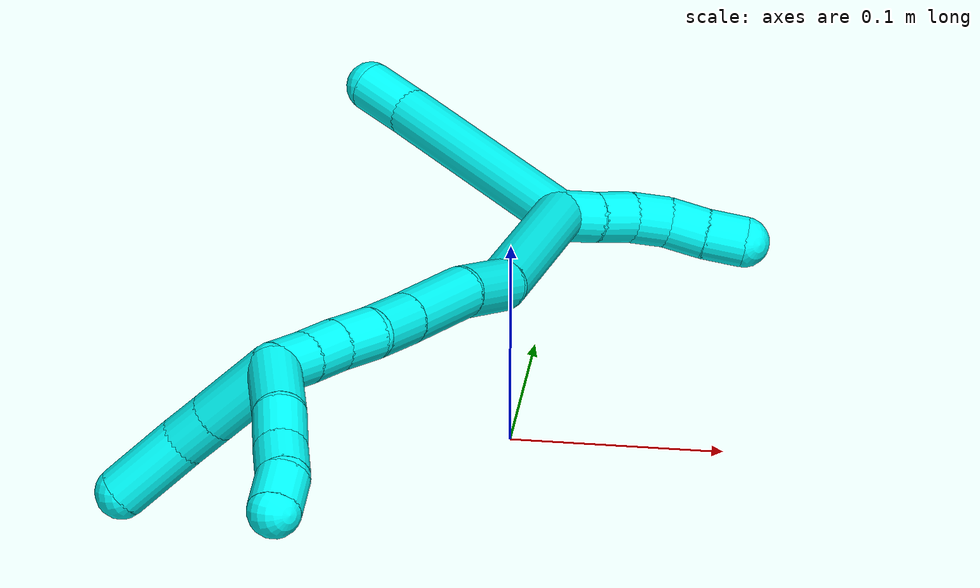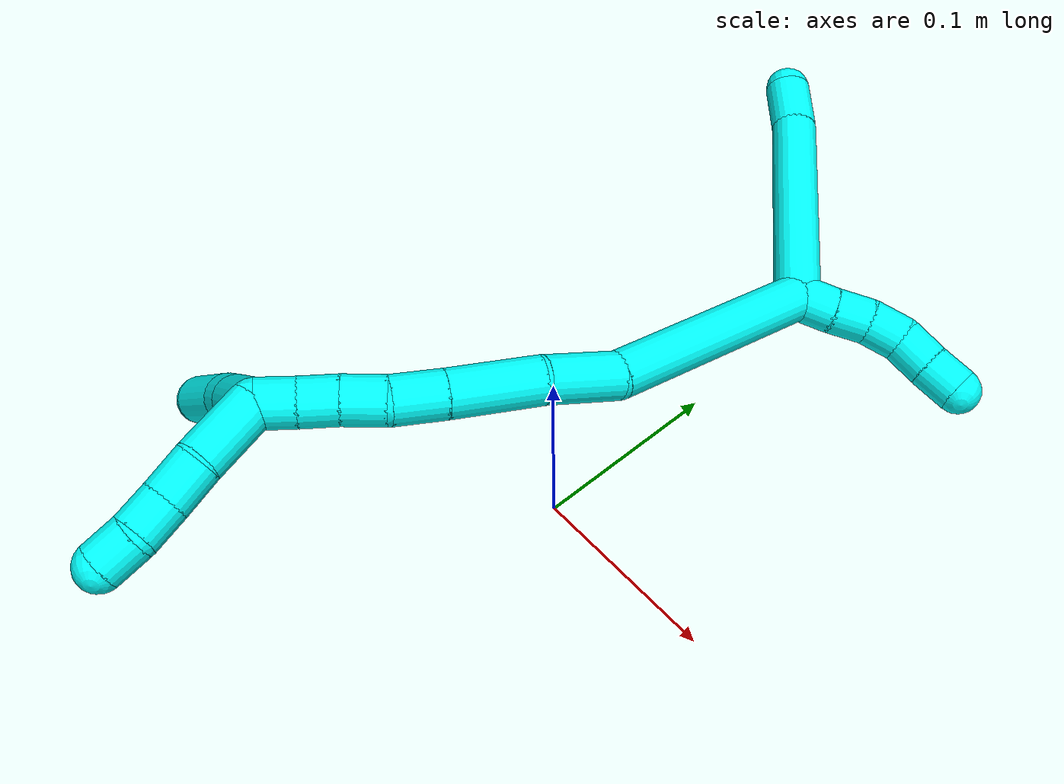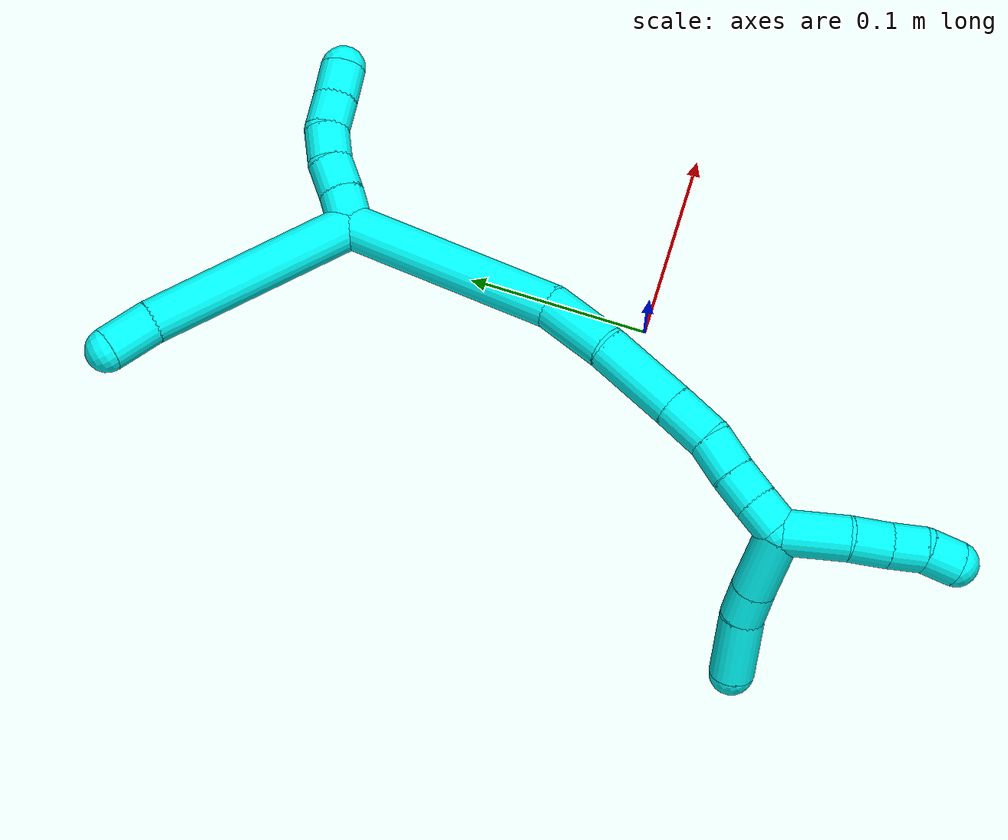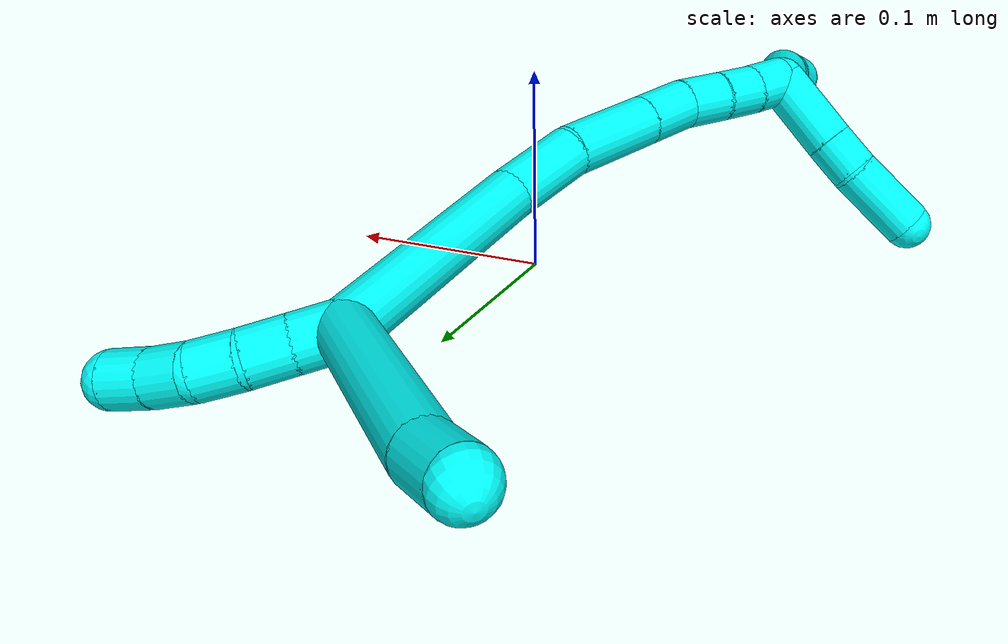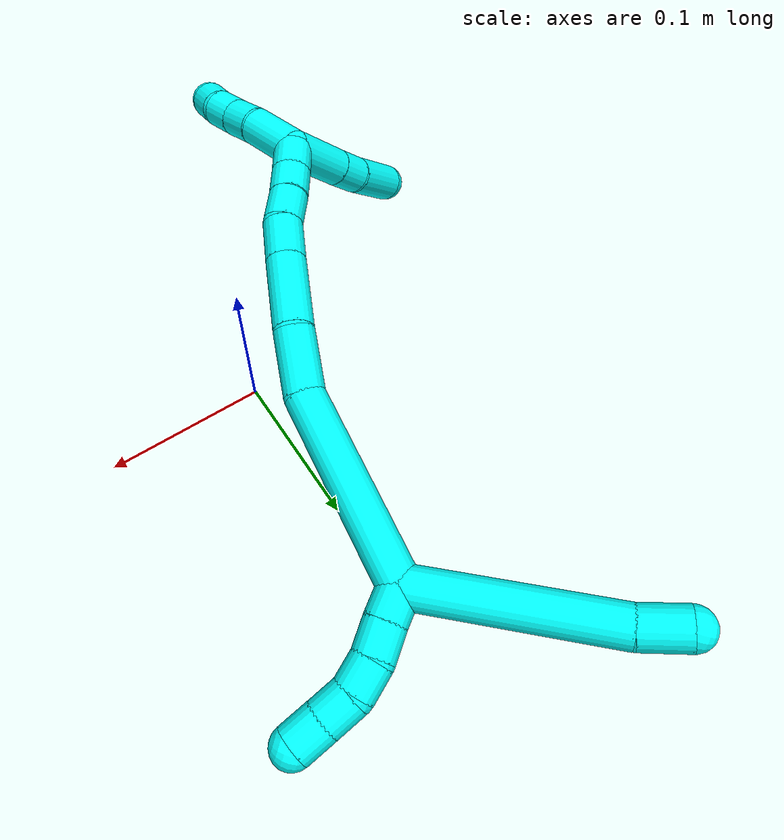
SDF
<sdf version="1.7">
 <world name="default">
  <model name="3">
   <static>0</static>
   <link name="3">
    <collision name="collision-cylinder-e_1_2_8">
     <pose>-0.017038 0.006879 -0.05782 -3.02318 -0.284656 2.35712</pose>
     <geometry><cylinder><radius>0.0125</radius><length>0.121339</length></cylinder></geometry>
     <surface>
      <friction><ode><mu>1.16</mu><mu2>1.16</mu2><slip1>0</slip1><slip2>0</slip2></ode></friction>
      <contact><ode><kp>1e+06</kp><kd>1</kd><max_vel>0</max_vel><min_depth>0.001</min_depth></ode></contact>
     </surface>
    </collision>
    <visual name="visual-cylinder-e_1_2_8">
     <pose>-0.017038 0.006879 -0.05782 -3.02318 -0.284656 2.35712</pose>
     <geometry><cylinder><radius>0.0125</radius><length>0.121339</length></cylinder></geometry>
     <material><ambient>0.003922 1 0.996078 1</ambient></material>
    </visual>
    <collision name="collision-cylinder-e_2_8_6">
     <pose>-0.039914 0.014148 -0.128722 -3.11178 -0.419661 3.00184</pose>
     <geometry><cylinder><radius>0.0125</radius><length>0.028661</length></cylinder></geometry>
     <surface>
      <friction><ode><mu>1.16</mu><mu2>1.16</mu2><slip1>0</slip1><slip2>0</slip2></ode></friction>
      <contact><ode><kp>1e+06</kp><kd>1</kd><max_vel>0</max_vel><min_depth>0.001</min_depth></ode></contact>
     </surface>
    </collision>
    <visual name="visual-cylinder-e_2_8_6">
     <pose>-0.039914 0.014148 -0.128722 -3.11178 -0.419661 3.00184</pose>
     <geometry><cylinder><radius>0.0125</radius><length>0.028661</length></cylinder></geometry>
     <material><ambient>0.003922 1 0.996078 1</ambient></material>
    </visual>
    <collision name="collision-cylinder-e_1_2_9">
     <pose>0.006171 0.007747 0.001383 -1.39407 0.665004 -0.562884</pose>
     <geometry><cylinder><radius>0.0125</radius><length>0.02</length></cylinder></geometry>
     <surface>
      <friction><ode><mu>1.16</mu><mu2>1.16</mu2><slip1>0</slip1><slip2>0</slip2></ode></friction>
      <contact><ode><kp>1e+06</kp><kd>1</kd><max_vel>0</max_vel><min_depth>0.001</min_depth></ode></contact>
     </surface>
    </collision>
    <visual name="visual-cylinder-e_1_2_9">
     <pose>0.006171 0.007747 0.001383 -1.39407 0.665004 -0.562884</pose>
     <geometry><cylinder><radius>0.0125</radius><length>0.02</length></cylinder></geometry>
     <material><ambient>0.003922 1 0.996078 1</ambient></material>
    </visual>
    <collision name="collision-cylinder-e_2_9_10">
     <pose>0.018182 0.023569 0.003582 -1.47016 0.623778 -0.567272</pose>
     <geometry><cylinder><radius>0.0125</radius><length>0.02</length></cylinder></geometry>
     <surface>
      <friction><ode><mu>1.16</mu><mu2>1.16</mu2><slip1>0</slip1><slip2>0</slip2></ode></friction>
      <contact><ode><kp>1e+06</kp><kd>1</kd><max_vel>0</max_vel><min_depth>0.001</min_depth></ode></contact>
     </surface>
    </collision>
    <visual name="visual-cylinder-e_2_9_10">
     <pose>0.018182 0.023569 0.003582 -1.47016 0.623778 -0.567272</pose>
     <geometry><cylinder><radius>0.0125</radius><length>0.02</length></cylinder></geometry>
     <material><ambient>0.003922 1 0.996078 1</ambient></material>
    </visual>
    <collision name="collision-cylinder-e_3_10_11">
     <pose>0.030482 0.038789 0.00709 -1.21038 0.70214 -0.496275</pose>
     <geometry><cylinder><radius>0.0125</radius><length>0.02</length></cylinder></geometry>
     <surface>
      <friction><ode><mu>1.16</mu><mu2>1.16</mu2><slip1>0</slip1><slip2>0</slip2></ode></friction>
      <contact><ode><kp>1e+06</kp><kd>1</kd><max_vel>0</max_vel><min_depth>0.001</min_depth></ode></contact>
     </surface>
    </collision>
    <visual name="visual-cylinder-e_3_10_11">
     <pose>0.030482 0.038789 0.00709 -1.21038 0.70214 -0.496275</pose>
     <geometry><cylinder><radius>0.0125</radius><length>0.02</length></cylinder></geometry>
     <material><ambient>0.003922 1 0.996078 1</ambient></material>
    </visual>
    <collision name="collision-cylinder-e_4_11_12">
     <pose>0.043569 0.051114 0.015188 -0.764268 0.724675 -0.302367</pose>
     <geometry><cylinder><radius>0.0125</radius><length>0.02</length></cylinder></geometry>
     <surface>
      <friction><ode><mu>1.16</mu><mu2>1.16</mu2><slip1>0</slip1><slip2>0</slip2></ode></friction>
      <contact><ode><kp>1e+06</kp><kd>1</kd><max_vel>0</max_vel><min_depth>0.001</min_depth></ode></contact>
     </surface>
    </collision>
    <visual name="visual-cylinder-e_4_11_12">
     <pose>0.043569 0.051114 0.015188 -0.764268 0.724675 -0.302367</pose>
     <geometry><cylinder><radius>0.0125</radius><length>0.02</length></cylinder></geometry>
     <material><ambient>0.003922 1 0.996078 1</ambient></material>
    </visual>
    <collision name="collision-cylinder-e_5_12_5">
     <pose>0.05611 0.062048 0.026245 -0.79417 0.632525 -0.272766</pose>
     <geometry><cylinder><radius>0.0125</radius><length>0.02</length></cylinder></geometry>
     <surface>
      <friction><ode><mu>1.16</mu><mu2>1.16</mu2><slip1>0</slip1><slip2>0</slip2></ode></friction>
      <contact><ode><kp>1e+06</kp><kd>1</kd><max_vel>0</max_vel><min_depth>0.001</min_depth></ode></contact>
     </surface>
    </collision>
    <visual name="visual-cylinder-e_5_12_5">
     <pose>0.05611 0.062048 0.026245 -0.79417 0.632525 -0.272766</pose>
     <geometry><cylinder><radius>0.0125</radius><length>0.02</length></cylinder></geometry>
     <material><ambient>0.003922 1 0.996078 1</ambient></material>
    </visual>
    <collision name="collision-cylinder-e_1_2_13">
     <pose>-0.018423 -0.042715 0.038837 0.832916 -0.3089 -0.137516</pose>
     <geometry><cylinder><radius>0.0125</radius><length>0.121198</length></cylinder></geometry>
     <surface>
      <friction><ode><mu>1.16</mu><mu2>1.16</mu2><slip1>0</slip1><slip2>0</slip2></ode></friction>
      <contact><ode><kp>1e+06</kp><kd>1</kd><max_vel>0</max_vel><min_depth>0.001</min_depth></ode></contact>
     </surface>
    </collision>
    <visual name="visual-cylinder-e_1_2_13">
     <pose>-0.018423 -0.042715 0.038837 0.832916 -0.3089 -0.137516</pose>
     <geometry><cylinder><radius>0.0125</radius><length>0.121198</length></cylinder></geometry>
     <material><ambient>0.003922 1 0.996078 1</ambient></material>
    </visual>
    <collision name="collision-cylinder-e_2_13_14">
     <pose>-0.047596 -0.100251 0.086376 1.03986 -0.558948 -0.325671</pose>
     <geometry><cylinder><radius>0.0125</radius><length>0.040546</length></cylinder></geometry>
     <surface>
      <friction><ode><mu>1.16</mu><mu2>1.16</mu2><slip1>0</slip1><slip2>0</slip2></ode></friction>
      <contact><ode><kp>1e+06</kp><kd>1</kd><max_vel>0</max_vel><min_depth>0.001</min_depth></ode></contact>
     </surface>
    </collision>
    <visual name="visual-cylinder-e_2_13_14">
     <pose>-0.047596 -0.100251 0.086376 1.03986 -0.558948 -0.325671</pose>
     <geometry><cylinder><radius>0.0125</radius><length>0.040546</length></cylinder></geometry>
     <material><ambient>0.003922 1 0.996078 1</ambient></material>
    </visual>
    <collision name="collision-cylinder-e_3_14_15">
     <pose>-0.067809 -0.135506 0.103776 1.16837 -0.402785 -0.268346</pose>
     <geometry><cylinder><radius>0.0125</radius><length>0.048277</length></cylinder></geometry>
     <surface>
      <friction><ode><mu>1.16</mu><mu2>1.16</mu2><slip1>0</slip1><slip2>0</slip2></ode></friction>
      <contact><ode><kp>1e+06</kp><kd>1</kd><max_vel>0</max_vel><min_depth>0.001</min_depth></ode></contact>
     </surface>
    </collision>
    <visual name="visual-cylinder-e_3_14_15">
     <pose>-0.067809 -0.135506 0.103776 1.16837 -0.402785 -0.268346</pose>
     <geometry><cylinder><radius>0.0125</radius><length>0.048277</length></cylinder></geometry>
     <material><ambient>0.003922 1 0.996078 1</ambient></material>
    </visual>
    <collision name="collision-cylinder-e_4_15_16">
     <pose>-0.082904 -0.167505 0.117167 1.18532 -0.423908 -0.287816</pose>
     <geometry><cylinder><radius>0.0125</radius><length>0.027389</length></cylinder></geometry>
     <surface>
      <friction><ode><mu>1.16</mu><mu2>1.16</mu2><slip1>0</slip1><slip2>0</slip2></ode></friction>
      <contact><ode><kp>1e+06</kp><kd>1</kd><max_vel>0</max_vel><min_depth>0.001</min_depth></ode></contact>
     </surface>
    </collision>
    <visual name="visual-cylinder-e_4_15_16">
     <pose>-0.082904 -0.167505 0.117167 1.18532 -0.423908 -0.287816</pose>
     <geometry><cylinder><radius>0.0125</radius><length>0.027389</length></cylinder></geometry>
     <material><ambient>0.003922 1 0.996078 1</ambient></material>
    </visual>
    <collision name="collision-cylinder-e_5_16_17">
     <pose>-0.093081 -0.189237 0.123077 1.45172 -0.417749 -0.371889</pose>
     <geometry><cylinder><radius>0.0125</radius><length>0.022403</length></cylinder></geometry>
     <surface>
      <friction><ode><mu>1.16</mu><mu2>1.16</mu2><slip1>0</slip1><slip2>0</slip2></ode></friction>
      <contact><ode><kp>1e+06</kp><kd>1</kd><max_vel>0</max_vel><min_depth>0.001</min_depth></ode></contact>
     </surface>
    </collision>
    <visual name="visual-cylinder-e_5_16_17">
     <pose>-0.093081 -0.189237 0.123077 1.45172 -0.417749 -0.371889</pose>
     <geometry><cylinder><radius>0.0125</radius><length>0.022403</length></cylinder></geometry>
     <material><ambient>0.003922 1 0.996078 1</ambient></material>
    </visual>
    <collision name="collision-cylinder-e_6_17_18">
     <pose>-0.101355 -0.20853 0.126103 1.37508 -0.381174 -0.314257</pose>
     <geometry><cylinder><radius>0.0125</radius><length>0.020048</length></cylinder></geometry>
     <surface>
      <friction><ode><mu>1.16</mu><mu2>1.16</mu2><slip1>0</slip1><slip2>0</slip2></ode></friction>
      <contact><ode><kp>1e+06</kp><kd>1</kd><max_vel>0</max_vel><min_depth>0.001</min_depth></ode></contact>
     </surface>
    </collision>
    <visual name="visual-cylinder-e_6_17_18">
     <pose>-0.101355 -0.20853 0.126103 1.37508 -0.381174 -0.314257</pose>
     <geometry><cylinder><radius>0.0125</radius><length>0.020048</length></cylinder></geometry>
     <material><ambient>0.003922 1 0.996078 1</ambient></material>
    </visual>
    <collision name="collision-cylinder-e_7_18_1">
     <pose>-0.109321 -0.226564 0.12994 1.34697 -0.434307 -0.348533</pose>
     <geometry><cylinder><radius>0.0125</radius><length>0.020138</length></cylinder></geometry>
     <surface>
      <friction><ode><mu>1.16</mu><mu2>1.16</mu2><slip1>0</slip1><slip2>0</slip2></ode></friction>
      <contact><ode><kp>1e+06</kp><kd>1</kd><max_vel>0</max_vel><min_depth>0.001</min_depth></ode></contact>
     </surface>
    </collision>
    <visual name="visual-cylinder-e_7_18_1">
     <pose>-0.109321 -0.226564 0.12994 1.34697 -0.434307 -0.348533</pose>
     <geometry><cylinder><radius>0.0125</radius><length>0.020138</length></cylinder></geometry>
     <material><ambient>0.003922 1 0.996078 1</ambient></material>
    </visual>
    <collision name="collision-cylinder-e_1_1_19">
     <pose>-0.106185 -0.247801 0.117567 2.43345 0.370894 0.93929</pose>
     <geometry><cylinder><radius>0.0125</radius><length>0.040683</length></cylinder></geometry>
     <surface>
      <friction><ode><mu>1.16</mu><mu2>1.16</mu2><slip1>0</slip1><slip2>0</slip2></ode></friction>
      <contact><ode><kp>1e+06</kp><kd>1</kd><max_vel>0</max_vel><min_depth>0.001</min_depth></ode></contact>
     </surface>
    </collision>
    <visual name="visual-cylinder-e_1_1_19">
     <pose>-0.106185 -0.247801 0.117567 2.43345 0.370894 0.93929</pose>
     <geometry><cylinder><radius>0.0125</radius><length>0.040683</length></cylinder></geometry>
     <material><ambient>0.003922 1 0.996078 1</ambient></material>
    </visual>
    <collision name="collision-cylinder-e_2_19_20">
     <pose>-0.095312 -0.266566 0.096192 2.39645 0.353404 0.857137</pose>
     <geometry><cylinder><radius>0.0125</radius><length>0.020228</length></cylinder></geometry>
     <surface>
      <friction><ode><mu>1.16</mu><mu2>1.16</mu2><slip1>0</slip1><slip2>0</slip2></ode></friction>
      <contact><ode><kp>1e+06</kp><kd>1</kd><max_vel>0</max_vel><min_depth>0.001</min_depth></ode></contact>
     </surface>
    </collision>
    <visual name="visual-cylinder-e_2_19_20">
     <pose>-0.095312 -0.266566 0.096192 2.39645 0.353404 0.857137</pose>
     <geometry><cylinder><radius>0.0125</radius><length>0.020228</length></cylinder></geometry>
     <material><ambient>0.003922 1 0.996078 1</ambient></material>
    </visual>
    <collision name="collision-cylinder-e_3_20_4">
     <pose>-0.085769 -0.287727 0.077878 2.227 0.314282 0.623016</pose>
     <geometry><cylinder><radius>0.0125</radius><length>0.039089</length></cylinder></geometry>
     <surface>
      <friction><ode><mu>1.16</mu><mu2>1.16</mu2><slip1>0</slip1><slip2>0</slip2></ode></friction>
      <contact><ode><kp>1e+06</kp><kd>1</kd><max_vel>0</max_vel><min_depth>0.001</min_depth></ode></contact>
     </surface>
    </collision>
    <visual name="visual-cylinder-e_3_20_4">
     <pose>-0.085769 -0.287727 0.077878 2.227 0.314282 0.623016</pose>
     <geometry><cylinder><radius>0.0125</radius><length>0.039089</length></cylinder></geometry>
     <material><ambient>0.003922 1 0.996078 1</ambient></material>
    </visual>
    <collision name="collision-cylinder-e_1_1_21">
     <pose>-0.112113 -0.246593 0.146772 0.644346 0.077853 0.025999</pose>
     <geometry><cylinder><radius>0.0125</radius><length>0.037149</length></cylinder></geometry>
     <surface>
      <friction><ode><mu>1.16</mu><mu2>1.16</mu2><slip1>0</slip1><slip2>0</slip2></ode></friction>
      <contact><ode><kp>1e+06</kp><kd>1</kd><max_vel>0</max_vel><min_depth>0.001</min_depth></ode></contact>
     </surface>
    </collision>
    <visual name="visual-cylinder-e_1_1_21">
     <pose>-0.112113 -0.246593 0.146772 0.644346 0.077853 0.025999</pose>
     <geometry><cylinder><radius>0.0125</radius><length>0.037149</length></cylinder></geometry>
     <material><ambient>0.003922 1 0.996078 1</ambient></material>
    </visual>
    <collision name="collision-cylinder-e_2_21_22">
     <pose>-0.108206 -0.265364 0.169582 0.762561 0.218832 0.088024</pose>
     <geometry><cylinder><radius>0.0125</radius><length>0.022682</length></cylinder></geometry>
     <surface>
      <friction><ode><mu>1.16</mu><mu2>1.16</mu2><slip1>0</slip1><slip2>0</slip2></ode></friction>
      <contact><ode><kp>1e+06</kp><kd>1</kd><max_vel>0</max_vel><min_depth>0.001</min_depth></ode></contact>
     </surface>
    </collision>
    <visual name="visual-cylinder-e_2_21_22">
     <pose>-0.108206 -0.265364 0.169582 0.762561 0.218832 0.088024</pose>
     <geometry><cylinder><radius>0.0125</radius><length>0.022682</length></cylinder></geometry>
     <material><ambient>0.003922 1 0.996078 1</ambient></material>
    </visual>
    <collision name="collision-cylinder-e_3_22_23">
     <pose>-0.104318 -0.279365 0.185278 0.690518 0.142028 0.051157</pose>
     <geometry><cylinder><radius>0.0125</radius><length>0.020154</length></cylinder></geometry>
     <surface>
      <friction><ode><mu>1.16</mu><mu2>1.16</mu2><slip1>0</slip1><slip2>0</slip2></ode></friction>
      <contact><ode><kp>1e+06</kp><kd>1</kd><max_vel>0</max_vel><min_depth>0.001</min_depth></ode></contact>
     </surface>
    </collision>
    <visual name="visual-cylinder-e_3_22_23">
     <pose>-0.104318 -0.279365 0.185278 0.690518 0.142028 0.051157</pose>
     <geometry><cylinder><radius>0.0125</radius><length>0.020154</length></cylinder></geometry>
     <material><ambient>0.003922 1 0.996078 1</ambient></material>
    </visual>
    <collision name="collision-cylinder-e_4_23_3">
     <pose>-0.101094 -0.293955 0.198361 0.991028 0.180583 0.097792</pose>
     <geometry><cylinder><radius>0.0125</radius><length>0.020014</length></cylinder></geometry>
     <surface>
      <friction><ode><mu>1.16</mu><mu2>1.16</mu2><slip1>0</slip1><slip2>0</slip2></ode></friction>
      <contact><ode><kp>1e+06</kp><kd>1</kd><max_vel>0</max_vel><min_depth>0.001</min_depth></ode></contact>
     </surface>
    </collision>
    <visual name="visual-cylinder-e_4_23_3">
     <pose>-0.101094 -0.293955 0.198361 0.991028 0.180583 0.097792</pose>
     <geometry><cylinder><radius>0.0125</radius><length>0.020014</length></cylinder></geometry>
     <material><ambient>0.003922 1 0.996078 1</ambient></material>
    </visual>
    <collision name="collision-sphere-3">
     <pose>-0.099297 -0.302191 0.203754 0 -0 0</pose>
     <geometry><sphere><radius>0.0125</radius></sphere></geometry>
     <surface>
      <friction><ode><mu>1.16</mu><mu2>1.16</mu2><slip1>0</slip1><slip2>0</slip2></ode></friction>
      <contact><ode><kp>1e+06</kp><kd>1</kd><max_vel>0</max_vel><min_depth>0.001</min_depth></ode></contact>
     </surface>
    </collision>
    <visual name="visual-sphere-3">
     <pose>-0.099297 -0.302191 0.203754 0 -0 0</pose>
     <geometry><sphere><radius>0.0125</radius></sphere></geometry>
     <material><ambient>0.003922 1 0.996078 1</ambient></material>
    </visual>
    <collision name="collision-sphere-23">
     <pose>-0.102891 -0.285719 0.192968 0 -0 0</pose>
     <geometry><sphere><radius>0.0125</radius></sphere></geometry>
     <surface>
      <friction><ode><mu>1.16</mu><mu2>1.16</mu2><slip1>0</slip1><slip2>0</slip2></ode></friction>
      <contact><ode><kp>1e+06</kp><kd>1</kd><max_vel>0</max_vel><min_depth>0.001</min_depth></ode></contact>
     </surface>
    </collision>
    <visual name="visual-sphere-23">
     <pose>-0.102891 -0.285719 0.192968 0 -0 0</pose>
     <geometry><sphere><radius>0.0125</radius></sphere></geometry>
     <material><ambient>0.003922 1 0.996078 1</ambient></material>
    </visual>
    <collision name="collision-sphere-22">
     <pose>-0.105744 -0.273012 0.177587 0 -0 0</pose>
     <geometry><sphere><radius>0.0125</radius></sphere></geometry>
     <surface>
      <friction><ode><mu>1.16</mu><mu2>1.16</mu2><slip1>0</slip1><slip2>0</slip2></ode></friction>
      <contact><ode><kp>1e+06</kp><kd>1</kd><max_vel>0</max_vel><min_depth>0.001</min_depth></ode></contact>
     </surface>
    </collision>
    <visual name="visual-sphere-22">
     <pose>-0.105744 -0.273012 0.177587 0 -0 0</pose>
     <geometry><sphere><radius>0.0125</radius></sphere></geometry>
     <material><ambient>0.003922 1 0.996078 1</ambient></material>
    </visual>
    <collision name="collision-sphere-21">
     <pose>-0.110668 -0.257717 0.161578 0 -0 0</pose>
     <geometry><sphere><radius>0.0125</radius></sphere></geometry>
     <surface>
      <friction><ode><mu>1.16</mu><mu2>1.16</mu2><slip1>0</slip1><slip2>0</slip2></ode></friction>
      <contact><ode><kp>1e+06</kp><kd>1</kd><max_vel>0</max_vel><min_depth>0.001</min_depth></ode></contact>
     </surface>
    </collision>
    <visual name="visual-sphere-21">
     <pose>-0.110668 -0.257717 0.161578 0 -0 0</pose>
     <geometry><sphere><radius>0.0125</radius></sphere></geometry>
     <material><ambient>0.003922 1 0.996078 1</ambient></material>
    </visual>
    <collision name="collision-sphere-4">
     <pose>-0.079727 -0.302454 0.066537 0 -0 0</pose>
     <geometry><sphere><radius>0.0125</radius></sphere></geometry>
     <surface>
      <friction><ode><mu>1.16</mu><mu2>1.16</mu2><slip1>0</slip1><slip2>0</slip2></ode></friction>
      <contact><ode><kp>1e+06</kp><kd>1</kd><max_vel>0</max_vel><min_depth>0.001</min_depth></ode></contact>
     </surface>
    </collision>
    <visual name="visual-sphere-4">
     <pose>-0.079727 -0.302454 0.066537 0 -0 0</pose>
     <geometry><sphere><radius>0.0125</radius></sphere></geometry>
     <material><ambient>0.003922 1 0.996078 1</ambient></material>
    </visual>
    <collision name="collision-sphere-20">
     <pose>-0.091811 -0.273 0.089218 0 -0 0</pose>
     <geometry><sphere><radius>0.0125</radius></sphere></geometry>
     <surface>
      <friction><ode><mu>1.16</mu><mu2>1.16</mu2><slip1>0</slip1><slip2>0</slip2></ode></friction>
      <contact><ode><kp>1e+06</kp><kd>1</kd><max_vel>0</max_vel><min_depth>0.001</min_depth></ode></contact>
     </surface>
    </collision>
    <visual name="visual-sphere-20">
     <pose>-0.091811 -0.273 0.089218 0 -0 0</pose>
     <geometry><sphere><radius>0.0125</radius></sphere></geometry>
     <material><ambient>0.003922 1 0.996078 1</ambient></material>
    </visual>
    <collision name="collision-sphere-11">
     <pose>0.03694 0.045933 0.009783 0 -0 0</pose>
     <geometry><sphere><radius>0.0125</radius></sphere></geometry>
     <surface>
      <friction><ode><mu>1.16</mu><mu2>1.16</mu2><slip1>0</slip1><slip2>0</slip2></ode></friction>
      <contact><ode><kp>1e+06</kp><kd>1</kd><max_vel>0</max_vel><min_depth>0.001</min_depth></ode></contact>
     </surface>
    </collision>
    <visual name="visual-sphere-11">
     <pose>0.03694 0.045933 0.009783 0 -0 0</pose>
     <geometry><sphere><radius>0.0125</radius></sphere></geometry>
     <material><ambient>0.003922 1 0.996078 1</ambient></material>
    </visual>
    <collision name="collision-sphere-10">
     <pose>0.024023 0.031645 0.004398 0 -0 0</pose>
     <geometry><sphere><radius>0.0125</radius></sphere></geometry>
     <surface>
      <friction><ode><mu>1.16</mu><mu2>1.16</mu2><slip1>0</slip1><slip2>0</slip2></ode></friction>
      <contact><ode><kp>1e+06</kp><kd>1</kd><max_vel>0</max_vel><min_depth>0.001</min_depth></ode></contact>
     </surface>
    </collision>
    <visual name="visual-sphere-10">
     <pose>0.024023 0.031645 0.004398 0 -0 0</pose>
     <geometry><sphere><radius>0.0125</radius></sphere></geometry>
     <material><ambient>0.003922 1 0.996078 1</ambient></material>
    </visual>
    <collision name="collision-sphere-6">
     <pose>-0.045753 0.014538 -0.141803 0 -0 0</pose>
     <geometry><sphere><radius>0.0125</radius></sphere></geometry>
     <surface>
      <friction><ode><mu>1.16</mu><mu2>1.16</mu2><slip1>0</slip1><slip2>0</slip2></ode></friction>
      <contact><ode><kp>1e+06</kp><kd>1</kd><max_vel>0</max_vel><min_depth>0.001</min_depth></ode></contact>
     </surface>
    </collision>
    <visual name="visual-sphere-6">
     <pose>-0.045753 0.014538 -0.141803 0 -0 0</pose>
     <geometry><sphere><radius>0.0125</radius></sphere></geometry>
     <material><ambient>0.003922 1 0.996078 1</ambient></material>
    </visual>
    <collision name="collision-sphere-9">
     <pose>0.012341 0.015493 0.002767 0 -0 0</pose>
     <geometry><sphere><radius>0.0125</radius></sphere></geometry>
     <surface>
      <friction><ode><mu>1.16</mu><mu2>1.16</mu2><slip1>0</slip1><slip2>0</slip2></ode></friction>
      <contact><ode><kp>1e+06</kp><kd>1</kd><max_vel>0</max_vel><min_depth>0.001</min_depth></ode></contact>
     </surface>
    </collision>
    <visual name="visual-sphere-9">
     <pose>0.012341 0.015493 0.002767 0 -0 0</pose>
     <geometry><sphere><radius>0.0125</radius></sphere></geometry>
     <material><ambient>0.003922 1 0.996078 1</ambient></material>
    </visual>
    <collision name="collision-sphere-2">
     <geometry><sphere><radius>0.0125</radius></sphere></geometry>
     <surface>
      <friction><ode><mu>1.16</mu><mu2>1.16</mu2><slip1>0</slip1><slip2>0</slip2></ode></friction>
      <contact><ode><kp>1e+06</kp><kd>1</kd><max_vel>0</max_vel><min_depth>0.001</min_depth></ode></contact>
     </surface>
    </collision>
    <visual name="visual-sphere-2">
     <geometry><sphere><radius>0.0125</radius></sphere></geometry>
     <material><ambient>0.003922 1 0.996078 1</ambient></material>
    </visual>
    <collision name="collision-sphere-19">
     <pose>-0.098812 -0.260132 0.103166 0 -0 0</pose>
     <geometry><sphere><radius>0.0125</radius></sphere></geometry>
     <surface>
      <friction><ode><mu>1.16</mu><mu2>1.16</mu2><slip1>0</slip1><slip2>0</slip2></ode></friction>
      <contact><ode><kp>1e+06</kp><kd>1</kd><max_vel>0</max_vel><min_depth>0.001</min_depth></ode></contact>
     </surface>
    </collision>
    <visual name="visual-sphere-19">
     <pose>-0.098812 -0.260132 0.103166 0 -0 0</pose>
     <geometry><sphere><radius>0.0125</radius></sphere></geometry>
     <material><ambient>0.003922 1 0.996078 1</ambient></material>
    </visual>
    <collision name="collision-sphere-8">
     <pose>-0.034075 0.013758 -0.115641 0 -0 0</pose>
     <geometry><sphere><radius>0.0125</radius></sphere></geometry>
     <surface>
      <friction><ode><mu>1.16</mu><mu2>1.16</mu2><slip1>0</slip1><slip2>0</slip2></ode></friction>
      <contact><ode><kp>1e+06</kp><kd>1</kd><max_vel>0</max_vel><min_depth>0.001</min_depth></ode></contact>
     </surface>
    </collision>
    <visual name="visual-sphere-8">
     <pose>-0.034075 0.013758 -0.115641 0 -0 0</pose>
     <geometry><sphere><radius>0.0125</radius></sphere></geometry>
     <material><ambient>0.003922 1 0.996078 1</ambient></material>
    </visual>
    <collision name="collision-sphere-12">
     <pose>0.050198 0.056295 0.020592 0 -0 0</pose>
     <geometry><sphere><radius>0.0125</radius></sphere></geometry>
     <surface>
      <friction><ode><mu>1.16</mu><mu2>1.16</mu2><slip1>0</slip1><slip2>0</slip2></ode></friction>
      <contact><ode><kp>1e+06</kp><kd>1</kd><max_vel>0</max_vel><min_depth>0.001</min_depth></ode></contact>
     </surface>
    </collision>
    <visual name="visual-sphere-12">
     <pose>0.050198 0.056295 0.020592 0 -0 0</pose>
     <geometry><sphere><radius>0.0125</radius></sphere></geometry>
     <material><ambient>0.003922 1 0.996078 1</ambient></material>
    </visual>
    <collision name="collision-sphere-5">
     <pose>0.062022 0.067801 0.031898 0 -0 0</pose>
     <geometry><sphere><radius>0.0125</radius></sphere></geometry>
     <surface>
      <friction><ode><mu>1.16</mu><mu2>1.16</mu2><slip1>0</slip1><slip2>0</slip2></ode></friction>
      <contact><ode><kp>1e+06</kp><kd>1</kd><max_vel>0</max_vel><min_depth>0.001</min_depth></ode></contact>
     </surface>
    </collision>
    <visual name="visual-sphere-5">
     <pose>0.062022 0.067801 0.031898 0 -0 0</pose>
     <geometry><sphere><radius>0.0125</radius></sphere></geometry>
     <material><ambient>0.003922 1 0.996078 1</ambient></material>
    </visual>
    <collision name="collision-sphere-13">
     <pose>-0.036846 -0.08543 0.077674 0 -0 0</pose>
     <geometry><sphere><radius>0.0125</radius></sphere></geometry>
     <surface>
      <friction><ode><mu>1.16</mu><mu2>1.16</mu2><slip1>0</slip1><slip2>0</slip2></ode></friction>
      <contact><ode><kp>1e+06</kp><kd>1</kd><max_vel>0</max_vel><min_depth>0.001</min_depth></ode></contact>
     </surface>
    </collision>
    <visual name="visual-sphere-13">
     <pose>-0.036846 -0.08543 0.077674 0 -0 0</pose>
     <geometry><sphere><radius>0.0125</radius></sphere></geometry>
     <material><ambient>0.003922 1 0.996078 1</ambient></material>
    </visual>
    <collision name="collision-sphere-14">
     <pose>-0.058347 -0.115073 0.095079 0 -0 0</pose>
     <geometry><sphere><radius>0.0125</radius></sphere></geometry>
     <surface>
      <friction><ode><mu>1.16</mu><mu2>1.16</mu2><slip1>0</slip1><slip2>0</slip2></ode></friction>
      <contact><ode><kp>1e+06</kp><kd>1</kd><max_vel>0</max_vel><min_depth>0.001</min_depth></ode></contact>
     </surface>
    </collision>
    <visual name="visual-sphere-14">
     <pose>-0.058347 -0.115073 0.095079 0 -0 0</pose>
     <geometry><sphere><radius>0.0125</radius></sphere></geometry>
     <material><ambient>0.003922 1 0.996078 1</ambient></material>
    </visual>
    <collision name="collision-sphere-15">
     <pose>-0.077271 -0.155938 0.112474 0 -0 0</pose>
     <geometry><sphere><radius>0.0125</radius></sphere></geometry>
     <surface>
      <friction><ode><mu>1.16</mu><mu2>1.16</mu2><slip1>0</slip1><slip2>0</slip2></ode></friction>
      <contact><ode><kp>1e+06</kp><kd>1</kd><max_vel>0</max_vel><min_depth>0.001</min_depth></ode></contact>
     </surface>
    </collision>
    <visual name="visual-sphere-15">
     <pose>-0.077271 -0.155938 0.112474 0 -0 0</pose>
     <geometry><sphere><radius>0.0125</radius></sphere></geometry>
     <material><ambient>0.003922 1 0.996078 1</ambient></material>
    </visual>
    <collision name="collision-sphere-16">
     <pose>-0.088536 -0.179071 0.121861 0 -0 0</pose>
     <geometry><sphere><radius>0.0125</radius></sphere></geometry>
     <surface>
      <friction><ode><mu>1.16</mu><mu2>1.16</mu2><slip1>0</slip1><slip2>0</slip2></ode></friction>
      <contact><ode><kp>1e+06</kp><kd>1</kd><max_vel>0</max_vel><min_depth>0.001</min_depth></ode></contact>
     </surface>
    </collision>
    <visual name="visual-sphere-16">
     <pose>-0.088536 -0.179071 0.121861 0 -0 0</pose>
     <geometry><sphere><radius>0.0125</radius></sphere></geometry>
     <material><ambient>0.003922 1 0.996078 1</ambient></material>
    </visual>
    <collision name="collision-sphere-17">
     <pose>-0.097626 -0.199403 0.124293 0 -0 0</pose>
     <geometry><sphere><radius>0.0125</radius></sphere></geometry>
     <surface>
      <friction><ode><mu>1.16</mu><mu2>1.16</mu2><slip1>0</slip1><slip2>0</slip2></ode></friction>
      <contact><ode><kp>1e+06</kp><kd>1</kd><max_vel>0</max_vel><min_depth>0.001</min_depth></ode></contact>
     </surface>
    </collision>
    <visual name="visual-sphere-17">
     <pose>-0.097626 -0.199403 0.124293 0 -0 0</pose>
     <geometry><sphere><radius>0.0125</radius></sphere></geometry>
     <material><ambient>0.003922 1 0.996078 1</ambient></material>
    </visual>
    <collision name="collision-sphere-18">
     <pose>-0.105084 -0.217657 0.127912 0 -0 0</pose>
     <geometry><sphere><radius>0.0125</radius></sphere></geometry>
     <surface>
      <friction><ode><mu>1.16</mu><mu2>1.16</mu2><slip1>0</slip1><slip2>0</slip2></ode></friction>
      <contact><ode><kp>1e+06</kp><kd>1</kd><max_vel>0</max_vel><min_depth>0.001</min_depth></ode></contact>
     </surface>
    </collision>
    <visual name="visual-sphere-18">
     <pose>-0.105084 -0.217657 0.127912 0 -0 0</pose>
     <geometry><sphere><radius>0.0125</radius></sphere></geometry>
     <material><ambient>0.003922 1 0.996078 1</ambient></material>
    </visual>
    <collision name="collision-sphere-1">
     <pose>-0.113557 -0.23547 0.131967 0 -0 0</pose>
     <geometry><sphere><radius>0.0125</radius></sphere></geometry>
     <surface>
      <friction><ode><mu>1.16</mu><mu2>1.16</mu2><slip1>0</slip1><slip2>0</slip2></ode></friction>
      <contact><ode><kp>1e+06</kp><kd>1</kd><max_vel>0</max_vel><min_depth>0.001</min_depth></ode></contact>
     </surface>
    </collision>
    <visual name="visual-sphere-1">
     <pose>-0.113557 -0.23547 0.131967 0 -0 0</pose>
     <geometry><sphere><radius>0.0125</radius></sphere></geometry>
     <material><ambient>0.003922 1 0.996078 1</ambient></material>
    </visual>
    <inertial>
     <pose>-0.048656 -0.10915 0.055295 0 -0 0</pose>
     <mass>0.75</mass>
     <inertia>
      <ixx>0.000167</ixx>
      <ixy>0</ixy>
      <ixz>0</ixz>
      <iyy>0.000305</iyy>
      <iyz>0</iyz>
      <izz>0.000217</izz>
     </inertia>
    </inertial>
   </link>
   <pose>0.003294 0.169929 0.036093 1.03638 1.13371 0.281852</pose>
  </model>
 </world>
</sdf>
